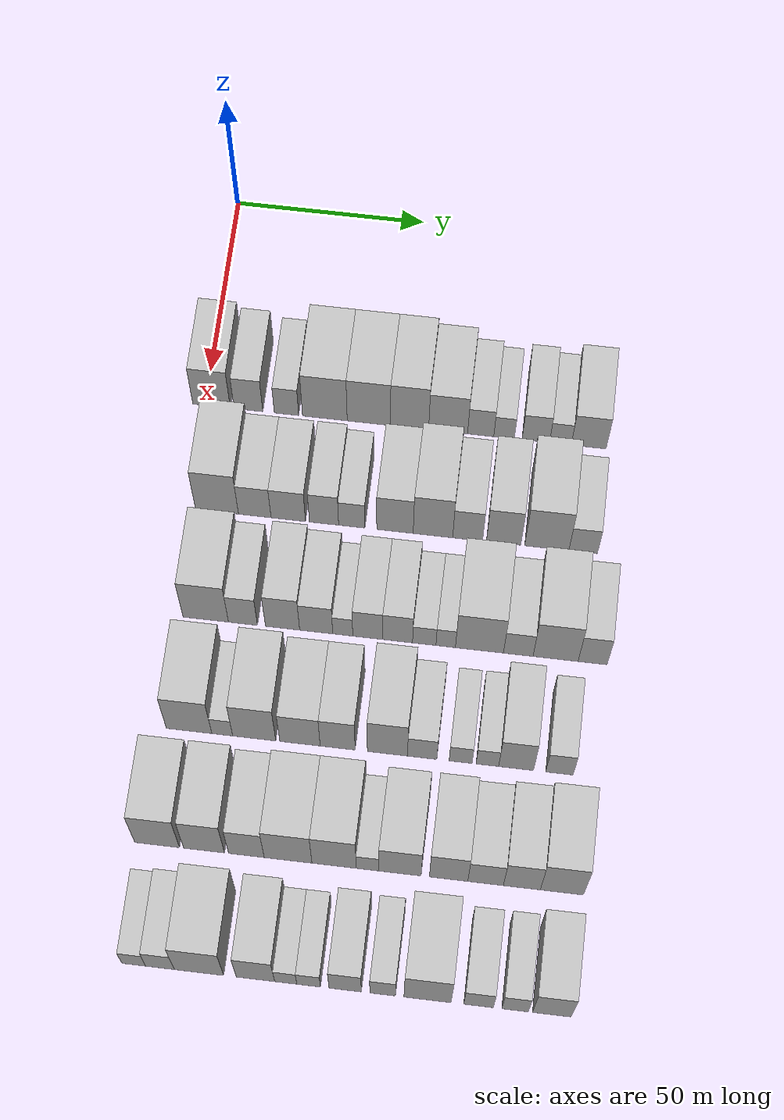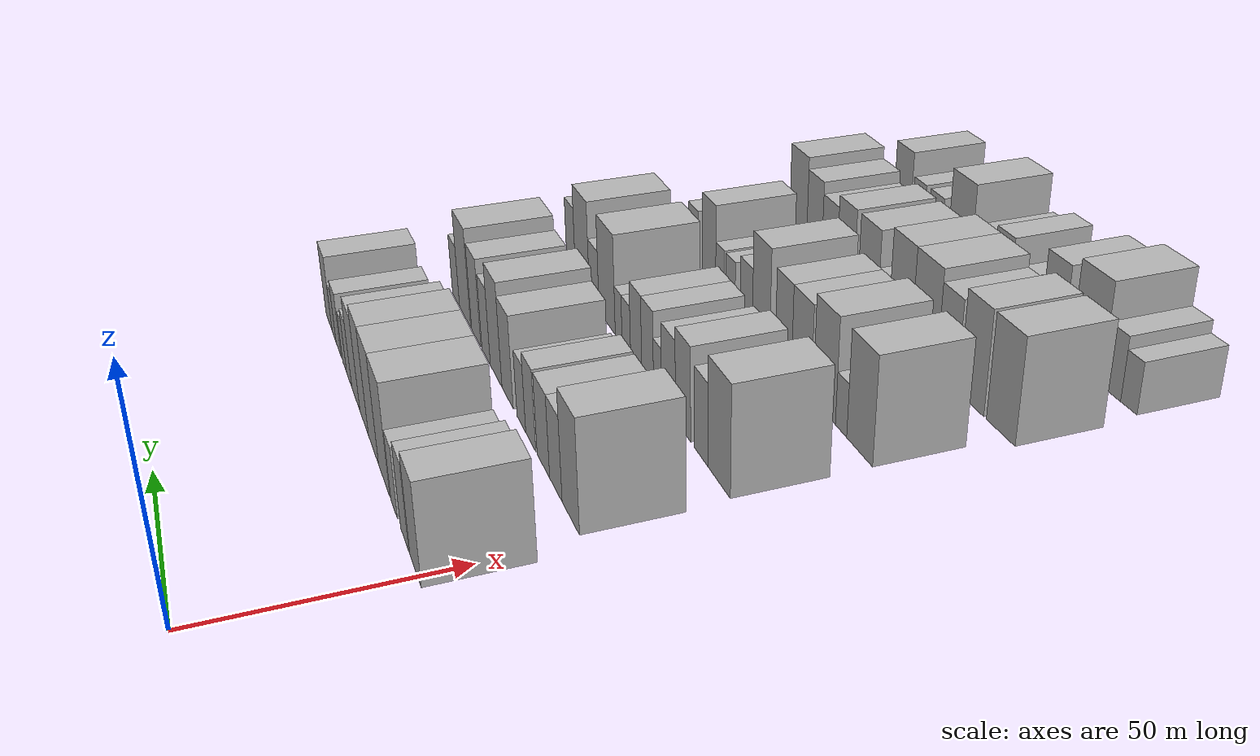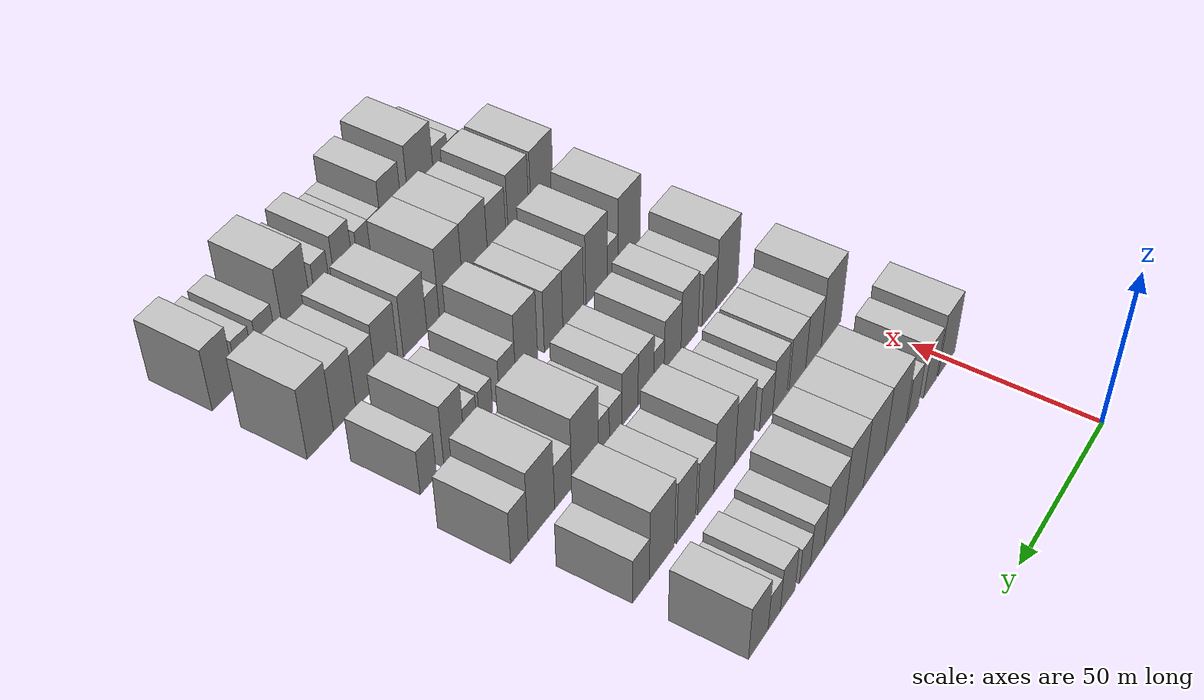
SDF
<sdf version="1.6">
 <world name="default">
  <model name="building_59">
   <static>1</static>
   <pose>50.0000 1.6662 0 0.000000 0.000000 0.000000</pose>
   <link name="link">
    <pose>0 0 10.50 0 0 0</pose>
    <collision name="collision"><geometry><box><size>20.0000 9.7988 21.0000</size></box></geometry></collision>
    <visual name="visual">
     <cast_shadows>0</cast_shadows>
     <geometry><box><size>20.0000 9.7988 21.0000</size></box></geometry>
     <material>
      <script>
       <uri>model://HANNAS_wall/materials/scripts</uri>
       <uri>model://HANNAS_wall/materials/textures</uri>
       <name>vrc/HANNAS_wall</name>
      </script>
     </material>
    </visual>
   </link>
  </model>
  <model name="building_60">
   <static>1</static>
   <pose>50.0000 11.2999 0 0.000000 0.000000 0.000000</pose>
   <link name="link">
    <pose>0 0 9.00 0 0 0</pose>
    <collision name="collision"><geometry><box><size>20.0000 7.4685 18.0000</size></box></geometry></collision>
    <visual name="visual">
     <cast_shadows>0</cast_shadows>
     <geometry><box><size>20.0000 7.4685 18.0000</size></box></geometry>
     <material>
      <script>
       <uri>model://HANNAS_wall/materials/scripts</uri>
       <uri>model://HANNAS_wall/materials/textures</uri>
       <name>vrc/HANNAS_wall</name>
      </script>
     </material>
    </visual>
   </link>
  </model>
  <model name="building_61">
   <static>1</static>
   <pose>50.0000 21.2005 0 0.000000 0.000000 0.000000</pose>
   <link name="link">
    <pose>0 0 7.50 0 0 0</pose>
    <collision name="collision"><geometry><box><size>20.0000 6.3329 15.0000</size></box></geometry></collision>
    <visual name="visual">
     <cast_shadows>0</cast_shadows>
     <geometry><box><size>20.0000 6.3329 15.0000</size></box></geometry>
     <material>
      <script>
       <uri>model://HANNAS_wall/materials/scripts</uri>
       <uri>model://HANNAS_wall/materials/textures</uri>
       <name>vrc/HANNAS_wall</name>
      </script>
     </material>
    </visual>
   </link>
  </model>
  <model name="building_62">
   <static>1</static>
   <pose>50.0000 31.1715 0 0.000000 0.000000 0.000000</pose>
   <link name="link">
    <pose>0 0 12.00 0 0 0</pose>
    <collision name="collision"><geometry><box><size>20.0000 11.6090 24.0000</size></box></geometry></collision>
    <visual name="visual">
     <cast_shadows>0</cast_shadows>
     <geometry><box><size>20.0000 11.6090 24.0000</size></box></geometry>
     <material>
      <script>
       <uri>model://HANNAS_wall/materials/scripts</uri>
       <uri>model://HANNAS_wall/materials/textures</uri>
       <name>vrc/HANNAS_wall</name>
      </script>
     </material>
    </visual>
   </link>
  </model>
  <model name="building_63">
   <static>1</static>
   <pose>50.0000 42.5768 0 0.000000 0.000000 0.000000</pose>
   <link name="link">
    <pose>0 0 12.00 0 0 0</pose>
    <collision name="collision"><geometry><box><size>20.0000 11.2016 24.0000</size></box></geometry></collision>
    <visual name="visual">
     <cast_shadows>0</cast_shadows>
     <geometry><box><size>20.0000 11.2016 24.0000</size></box></geometry>
     <material>
      <script>
       <uri>model://HANNAS_wall/materials/scripts</uri>
       <uri>model://HANNAS_wall/materials/textures</uri>
       <name>vrc/HANNAS_wall</name>
      </script>
     </material>
    </visual>
   </link>
  </model>
  <model name="building_64">
   <static>1</static>
   <pose>50.0000 53.1320 0 0.000000 0.000000 0.000000</pose>
   <link name="link">
    <pose>0 0 12.00 0 0 0</pose>
    <collision name="collision"><geometry><box><size>20.0000 9.9088 24.0000</size></box></geometry></collision>
    <visual name="visual">
     <cast_shadows>0</cast_shadows>
     <geometry><box><size>20.0000 9.9088 24.0000</size></box></geometry>
     <material>
      <script>
       <uri>model://HANNAS_wall/materials/scripts</uri>
       <uri>model://HANNAS_wall/materials/textures</uri>
       <name>vrc/HANNAS_wall</name>
      </script>
     </material>
    </visual>
   </link>
  </model>
  <model name="building_65">
   <static>1</static>
   <pose>50.0000 63.1203 0 0.000000 0.000000 0.000000</pose>
   <link name="link">
    <pose>0 0 10.50 0 0 0</pose>
    <collision name="collision"><geometry><box><size>20.0000 10.0676 21.0000</size></box></geometry></collision>
    <visual name="visual">
     <cast_shadows>0</cast_shadows>
     <geometry><box><size>20.0000 10.0676 21.0000</size></box></geometry>
     <material>
      <script>
       <uri>model://HANNAS_wall/materials/scripts</uri>
       <uri>model://HANNAS_wall/materials/textures</uri>
       <name>vrc/HANNAS_wall</name>
      </script>
     </material>
    </visual>
   </link>
  </model>
  <model name="building_66">
   <static>1</static>
   <pose>50.0000 71.5389 0 0.000000 0.000000 0.000000</pose>
   <link name="link">
    <pose>0 0 7.50 0 0 0</pose>
    <collision name="collision"><geometry><box><size>20.0000 6.7696 15.0000</size></box></geometry></collision>
    <visual name="visual">
     <cast_shadows>0</cast_shadows>
     <geometry><box><size>20.0000 6.7696 15.0000</size></box></geometry>
     <material>
      <script>
       <uri>model://HANNAS_wall/materials/scripts</uri>
       <uri>model://HANNAS_wall/materials/textures</uri>
       <name>vrc/HANNAS_wall</name>
      </script>
     </material>
    </visual>
   </link>
  </model>
  <model name="building_67">
   <static>1</static>
   <pose>50.0000 77.5764 0 0.000000 0.000000 0.000000</pose>
   <link name="link">
    <pose>0 0 6.00 0 0 0</pose>
    <collision name="collision"><geometry><box><size>20.0000 5.3054 12.0000</size></box></geometry></collision>
    <visual name="visual">
     <cast_shadows>0</cast_shadows>
     <geometry><box><size>20.0000 5.3054 12.0000</size></box></geometry>
     <material>
      <script>
       <uri>model://HANNAS_wall/materials/scripts</uri>
       <uri>model://HANNAS_wall/materials/textures</uri>
       <name>vrc/HANNAS_wall</name>
      </script>
     </material>
    </visual>
   </link>
  </model>
  <model name="building_68">
   <static>1</static>
   <pose>50.0000 85.7597 0 0.000000 0.000000 0.000000</pose>
   <link name="link">
    <pose>0 0 7.50 0 0 0</pose>
    <collision name="collision"><geometry><box><size>20.0000 7.0612 15.0000</size></box></geometry></collision>
    <visual name="visual">
     <cast_shadows>0</cast_shadows>
     <geometry><box><size>20.0000 7.0612 15.0000</size></box></geometry>
     <material>
      <script>
       <uri>model://HANNAS_wall/materials/scripts</uri>
       <uri>model://HANNAS_wall/materials/textures</uri>
       <name>vrc/HANNAS_wall</name>
      </script>
     </material>
    </visual>
   </link>
  </model>
  <model name="building_69">
   <static>1</static>
   <pose>50.0000 92.0968 0 0.000000 0.000000 0.000000</pose>
   <link name="link">
    <pose>0 0 6.00 0 0 0</pose>
    <collision name="collision"><geometry><box><size>20.0000 5.6129 12.0000</size></box></geometry></collision>
    <visual name="visual">
     <cast_shadows>0</cast_shadows>
     <geometry><box><size>20.0000 5.6129 12.0000</size></box></geometry>
     <material>
      <script>
       <uri>model://HANNAS_wall/materials/scripts</uri>
       <uri>model://HANNAS_wall/materials/textures</uri>
       <name>vrc/HANNAS_wall</name>
      </script>
     </material>
    </visual>
   </link>
  </model>
  <model name="building_70">
   <static>1</static>
   <pose>50.0000 99.3891 0 0.000000 0.000000 0.000000</pose>
   <link name="link">
    <pose>0 0 9.00 0 0 0</pose>
    <collision name="collision"><geometry><box><size>20.0000 8.9718 18.0000</size></box></geometry></collision>
    <visual name="visual">
     <cast_shadows>0</cast_shadows>
     <geometry><box><size>20.0000 8.9718 18.0000</size></box></geometry>
     <material>
      <script>
       <uri>model://HANNAS_wall/materials/scripts</uri>
       <uri>model://HANNAS_wall/materials/textures</uri>
       <name>vrc/HANNAS_wall</name>
      </script>
     </material>
    </visual>
   </link>
  </model>
  <model name="building_177">
   <static>1</static>
   <pose>79.0000 7.3074 0 0.000000 0.000000 0.000000</pose>
   <link name="link">
    <pose>0 0 12.00 0 0 0</pose>
    <collision name="collision"><geometry><box><size>20.0000 11.0005 24.0000</size></box></geometry></collision>
    <visual name="visual">
     <cast_shadows>0</cast_shadows>
     <geometry><box><size>20.0000 11.0005 24.0000</size></box></geometry>
     <material>
      <script>
       <uri>model://HANNAS_wall/materials/scripts</uri>
       <uri>model://HANNAS_wall/materials/textures</uri>
       <name>vrc/HANNAS_wall</name>
      </script>
     </material>
    </visual>
   </link>
  </model>
  <model name="building_178">
   <static>1</static>
   <pose>79.0000 16.9715 0 0.000000 0.000000 0.000000</pose>
   <link name="link">
    <pose>0 0 9.00 0 0 0</pose>
    <collision name="collision"><geometry><box><size>20.0000 8.3276 18.0000</size></box></geometry></collision>
    <visual name="visual">
     <cast_shadows>0</cast_shadows>
     <geometry><box><size>20.0000 8.3276 18.0000</size></box></geometry>
     <material>
      <script>
       <uri>model://HANNAS_wall/materials/scripts</uri>
       <uri>model://HANNAS_wall/materials/textures</uri>
       <name>vrc/HANNAS_wall</name>
      </script>
     </material>
    </visual>
   </link>
  </model>
  <model name="building_179">
   <static>1</static>
   <pose>79.0000 25.5395 0 0.000000 0.000000 0.000000</pose>
   <link name="link">
    <pose>0 0 9.00 0 0 0</pose>
    <collision name="collision"><geometry><box><size>20.0000 8.8085 18.0000</size></box></geometry></collision>
    <visual name="visual">
     <cast_shadows>0</cast_shadows>
     <geometry><box><size>20.0000 8.8085 18.0000</size></box></geometry>
     <material>
      <script>
       <uri>model://HANNAS_wall/materials/scripts</uri>
       <uri>model://HANNAS_wall/materials/textures</uri>
       <name>vrc/HANNAS_wall</name>
      </script>
     </material>
    </visual>
   </link>
  </model>
  <model name="building_180">
   <static>1</static>
   <pose>79.0000 34.6642 0 0.000000 0.000000 0.000000</pose>
   <link name="link">
    <pose>0 0 9.00 0 0 0</pose>
    <collision name="collision"><geometry><box><size>20.0000 7.4408 18.0000</size></box></geometry></collision>
    <visual name="visual">
     <cast_shadows>0</cast_shadows>
     <geometry><box><size>20.0000 7.4408 18.0000</size></box></geometry>
     <material>
      <script>
       <uri>model://HANNAS_wall/materials/scripts</uri>
       <uri>model://HANNAS_wall/materials/textures</uri>
       <name>vrc/HANNAS_wall</name>
      </script>
     </material>
    </visual>
   </link>
  </model>
  <model name="building_181">
   <static>1</static>
   <pose>79.0000 41.7404 0 0.000000 0.000000 0.000000</pose>
   <link name="link">
    <pose>0 0 7.50 0 0 0</pose>
    <collision name="collision"><geometry><box><size>20.0000 6.7117 15.0000</size></box></geometry></collision>
    <visual name="visual">
     <cast_shadows>0</cast_shadows>
     <geometry><box><size>20.0000 6.7117 15.0000</size></box></geometry>
     <material>
      <script>
       <uri>model://HANNAS_wall/materials/scripts</uri>
       <uri>model://HANNAS_wall/materials/textures</uri>
       <name>vrc/HANNAS_wall</name>
      </script>
     </material>
    </visual>
   </link>
  </model>
  <model name="building_182">
   <static>1</static>
   <pose>79.0000 52.7337 0 0.000000 0.000000 0.000000</pose>
   <link name="link">
    <pose>0 0 10.50 0 0 0</pose>
    <collision name="collision"><geometry><box><size>20.0000 9.2749 21.0000</size></box></geometry></collision>
    <visual name="visual">
     <cast_shadows>0</cast_shadows>
     <geometry><box><size>20.0000 9.2749 21.0000</size></box></geometry>
     <material>
      <script>
       <uri>model://HANNAS_wall/materials/scripts</uri>
       <uri>model://HANNAS_wall/materials/textures</uri>
       <name>vrc/HANNAS_wall</name>
      </script>
     </material>
    </visual>
   </link>
  </model>
  <model name="building_183">
   <static>1</static>
   <pose>79.0000 62.3837 0 0.000000 0.000000 0.000000</pose>
   <link name="link">
    <pose>0 0 12.00 0 0 0</pose>
    <collision name="collision"><geometry><box><size>20.0000 10.0250 24.0000</size></box></geometry></collision>
    <visual name="visual">
     <cast_shadows>0</cast_shadows>
     <geometry><box><size>20.0000 10.0250 24.0000</size></box></geometry>
     <material>
      <script>
       <uri>model://HANNAS_wall/materials/scripts</uri>
       <uri>model://HANNAS_wall/materials/textures</uri>
       <name>vrc/HANNAS_wall</name>
      </script>
     </material>
    </visual>
   </link>
  </model>
  <model name="building_184">
   <static>1</static>
   <pose>79.0000 71.1865 0 0.000000 0.000000 0.000000</pose>
   <link name="link">
    <pose>0 0 9.00 0 0 0</pose>
    <collision name="collision"><geometry><box><size>20.0000 7.5806 18.0000</size></box></geometry></collision>
    <visual name="visual">
     <cast_shadows>0</cast_shadows>
     <geometry><box><size>20.0000 7.5806 18.0000</size></box></geometry>
     <material>
      <script>
       <uri>model://HANNAS_wall/materials/scripts</uri>
       <uri>model://HANNAS_wall/materials/textures</uri>
       <name>vrc/HANNAS_wall</name>
      </script>
     </material>
    </visual>
   </link>
  </model>
  <model name="building_185">
   <static>1</static>
   <pose>79.0000 80.3254 0 0.000000 0.000000 0.000000</pose>
   <link name="link">
    <pose>0 0 10.50 0 0 0</pose>
    <collision name="collision"><geometry><box><size>20.0000 8.6972 21.0000</size></box></geometry></collision>
    <visual name="visual">
     <cast_shadows>0</cast_shadows>
     <geometry><box><size>20.0000 8.6972 21.0000</size></box></geometry>
     <material>
      <script>
       <uri>model://HANNAS_wall/materials/scripts</uri>
       <uri>model://HANNAS_wall/materials/textures</uri>
       <name>vrc/HANNAS_wall</name>
      </script>
     </material>
    </visual>
   </link>
  </model>
  <model name="building_186">
   <static>1</static>
   <pose>79.0000 91.2514 0 0.000000 0.000000 0.000000</pose>
   <link name="link">
    <pose>0 0 12.00 0 0 0</pose>
    <collision name="collision"><geometry><box><size>20.0000 11.1548 24.0000</size></box></geometry></collision>
    <visual name="visual">
     <cast_shadows>0</cast_shadows>
     <geometry><box><size>20.0000 11.1548 24.0000</size></box></geometry>
     <material>
      <script>
       <uri>model://HANNAS_wall/materials/scripts</uri>
       <uri>model://HANNAS_wall/materials/textures</uri>
       <name>vrc/HANNAS_wall</name>
      </script>
     </material>
    </visual>
   </link>
  </model>
  <model name="building_187">
   <static>1</static>
   <pose>79.0000 100.4336 0 0.000000 0.000000 0.000000</pose>
   <link name="link">
    <pose>0 0 7.50 0 0 0</pose>
    <collision name="collision"><geometry><box><size>20.0000 7.2096 15.0000</size></box></geometry></collision>
    <visual name="visual">
     <cast_shadows>0</cast_shadows>
     <geometry><box><size>20.0000 7.2096 15.0000</size></box></geometry>
     <material>
      <script>
       <uri>model://HANNAS_wall/materials/scripts</uri>
       <uri>model://HANNAS_wall/materials/textures</uri>
       <name>vrc/HANNAS_wall</name>
      </script>
     </material>
    </visual>
   </link>
  </model>
  <model name="building_290">
   <static>1</static>
   <pose>108.0000 8.7087 0 0.000000 0.000000 0.000000</pose>
   <link name="link">
    <pose>0 0 12.00 0 0 0</pose>
    <collision name="collision"><geometry><box><size>20.0000 11.4126 24.0000</size></box></geometry></collision>
    <visual name="visual">
     <cast_shadows>0</cast_shadows>
     <geometry><box><size>20.0000 11.4126 24.0000</size></box></geometry>
     <material>
      <script>
       <uri>model://HANNAS_wall/materials/scripts</uri>
       <uri>model://HANNAS_wall/materials/textures</uri>
       <name>vrc/HANNAS_wall</name>
      </script>
     </material>
    </visual>
   </link>
  </model>
  <model name="building_291">
   <static>1</static>
   <pose>108.0000 18.0605 0 0.000000 0.000000 0.000000</pose>
   <link name="link">
    <pose>0 0 9.00 0 0 0</pose>
    <collision name="collision"><geometry><box><size>20.0000 7.2910 18.0000</size></box></geometry></collision>
    <visual name="visual">
     <cast_shadows>0</cast_shadows>
     <geometry><box><size>20.0000 7.2910 18.0000</size></box></geometry>
     <material>
      <script>
       <uri>model://HANNAS_wall/materials/scripts</uri>
       <uri>model://HANNAS_wall/materials/textures</uri>
       <name>vrc/HANNAS_wall</name>
      </script>
     </material>
    </visual>
   </link>
  </model>
  <model name="building_292">
   <static>1</static>
   <pose>108.0000 27.9884 0 0.000000 0.000000 0.000000</pose>
   <link name="link">
    <pose>0 0 10.50 0 0 0</pose>
    <collision name="collision"><geometry><box><size>20.0000 8.5649 21.0000</size></box></geometry></collision>
    <visual name="visual">
     <cast_shadows>0</cast_shadows>
     <geometry><box><size>20.0000 8.5649 21.0000</size></box></geometry>
     <material>
      <script>
       <uri>model://HANNAS_wall/materials/scripts</uri>
       <uri>model://HANNAS_wall/materials/textures</uri>
       <name>vrc/HANNAS_wall</name>
      </script>
     </material>
    </visual>
   </link>
  </model>
  <model name="building_293">
   <static>1</static>
   <pose>108.0000 36.4118 0 0.000000 0.000000 0.000000</pose>
   <link name="link">
    <pose>0 0 9.00 0 0 0</pose>
    <collision name="collision"><geometry><box><size>20.0000 8.2819 18.0000</size></box></geometry></collision>
    <visual name="visual">
     <cast_shadows>0</cast_shadows>
     <geometry><box><size>20.0000 8.2819 18.0000</size></box></geometry>
     <material>
      <script>
       <uri>model://HANNAS_wall/materials/scripts</uri>
       <uri>model://HANNAS_wall/materials/textures</uri>
       <name>vrc/HANNAS_wall</name>
      </script>
     </material>
    </visual>
   </link>
  </model>
  <model name="building_294">
   <static>1</static>
   <pose>108.0000 43.0559 0 0.000000 0.000000 0.000000</pose>
   <link name="link">
    <pose>0 0 6.00 0 0 0</pose>
    <collision name="collision"><geometry><box><size>20.0000 5.0061 12.0000</size></box></geometry></collision>
    <visual name="visual">
     <cast_shadows>0</cast_shadows>
     <geometry><box><size>20.0000 5.0061 12.0000</size></box></geometry>
     <material>
      <script>
       <uri>model://HANNAS_wall/materials/scripts</uri>
       <uri>model://HANNAS_wall/materials/textures</uri>
       <name>vrc/HANNAS_wall</name>
      </script>
     </material>
    </visual>
   </link>
  </model>
  <model name="building_295">
   <static>1</static>
   <pose>108.0000 49.2959 0 0.000000 0.000000 0.000000</pose>
   <link name="link">
    <pose>0 0 9.00 0 0 0</pose>
    <collision name="collision"><geometry><box><size>20.0000 7.4739 18.0000</size></box></geometry></collision>
    <visual name="visual">
     <cast_shadows>0</cast_shadows>
     <geometry><box><size>20.0000 7.4739 18.0000</size></box></geometry>
     <material>
      <script>
       <uri>model://HANNAS_wall/materials/scripts</uri>
       <uri>model://HANNAS_wall/materials/textures</uri>
       <name>vrc/HANNAS_wall</name>
      </script>
     </material>
    </visual>
   </link>
  </model>
  <model name="building_296">
   <static>1</static>
   <pose>108.0000 56.7642 0 0.000000 0.000000 0.000000</pose>
   <link name="link">
    <pose>0 0 9.00 0 0 0</pose>
    <collision name="collision"><geometry><box><size>20.0000 7.4628 18.0000</size></box></geometry></collision>
    <visual name="visual">
     <cast_shadows>0</cast_shadows>
     <geometry><box><size>20.0000 7.4628 18.0000</size></box></geometry>
     <material>
      <script>
       <uri>model://HANNAS_wall/materials/scripts</uri>
       <uri>model://HANNAS_wall/materials/textures</uri>
       <name>vrc/HANNAS_wall</name>
      </script>
     </material>
    </visual>
   </link>
  </model>
  <model name="building_297">
   <static>1</static>
   <pose>108.0000 63.4159 0 0.000000 0.000000 0.000000</pose>
   <link name="link">
    <pose>0 0 6.00 0 0 0</pose>
    <collision name="collision"><geometry><box><size>20.0000 5.8407 12.0000</size></box></geometry></collision>
    <visual name="visual">
     <cast_shadows>0</cast_shadows>
     <geometry><box><size>20.0000 5.8407 12.0000</size></box></geometry>
     <material>
      <script>
       <uri>model://HANNAS_wall/materials/scripts</uri>
       <uri>model://HANNAS_wall/materials/textures</uri>
       <name>vrc/HANNAS_wall</name>
      </script>
     </material>
    </visual>
   </link>
  </model>
  <model name="building_298">
   <static>1</static>
   <pose>108.0000 68.7597 0 0.000000 0.000000 0.000000</pose>
   <link name="link">
    <pose>0 0 6.00 0 0 0</pose>
    <collision name="collision"><geometry><box><size>20.0000 4.8468 12.0000</size></box></geometry></collision>
    <visual name="visual">
     <cast_shadows>0</cast_shadows>
     <geometry><box><size>20.0000 4.8468 12.0000</size></box></geometry>
     <material>
      <script>
       <uri>model://HANNAS_wall/materials/scripts</uri>
       <uri>model://HANNAS_wall/materials/textures</uri>
       <name>vrc/HANNAS_wall</name>
      </script>
     </material>
    </visual>
   </link>
  </model>
  <model name="building_299">
   <static>1</static>
   <pose>108.0000 77.1583 0 0.000000 0.000000 0.000000</pose>
   <link name="link">
    <pose>0 0 12.00 0 0 0</pose>
    <collision name="collision"><geometry><box><size>20.0000 11.9503 24.0000</size></box></geometry></collision>
    <visual name="visual">
     <cast_shadows>0</cast_shadows>
     <geometry><box><size>20.0000 11.9503 24.0000</size></box></geometry>
     <material>
      <script>
       <uri>model://HANNAS_wall/materials/scripts</uri>
       <uri>model://HANNAS_wall/materials/textures</uri>
       <name>vrc/HANNAS_wall</name>
      </script>
     </material>
    </visual>
   </link>
  </model>
  <model name="building_300">
   <static>1</static>
   <pose>108.0000 86.8088 0 0.000000 0.000000 0.000000</pose>
   <link name="link">
    <pose>0 0 7.50 0 0 0</pose>
    <collision name="collision"><geometry><box><size>20.0000 7.3507 15.0000</size></box></geometry></collision>
    <visual name="visual">
     <cast_shadows>0</cast_shadows>
     <geometry><box><size>20.0000 7.3507 15.0000</size></box></geometry>
     <material>
      <script>
       <uri>model://HANNAS_wall/materials/scripts</uri>
       <uri>model://HANNAS_wall/materials/textures</uri>
       <name>vrc/HANNAS_wall</name>
      </script>
     </material>
    </visual>
   </link>
  </model>
  <model name="building_301">
   <static>1</static>
   <pose>108.0000 96.0688 0 0.000000 0.000000 0.000000</pose>
   <link name="link">
    <pose>0 0 12.00 0 0 0</pose>
    <collision name="collision"><geometry><box><size>20.0000 11.1694 24.0000</size></box></geometry></collision>
    <visual name="visual">
     <cast_shadows>0</cast_shadows>
     <geometry><box><size>20.0000 11.1694 24.0000</size></box></geometry>
     <material>
      <script>
       <uri>model://HANNAS_wall/materials/scripts</uri>
       <uri>model://HANNAS_wall/materials/textures</uri>
       <name>vrc/HANNAS_wall</name>
      </script>
     </material>
    </visual>
   </link>
  </model>
  <model name="building_302">
   <static>1</static>
   <pose>108.0000 105.2571 0 0.000000 0.000000 0.000000</pose>
   <link name="link">
    <pose>0 0 9.00 0 0 0</pose>
    <collision name="collision"><geometry><box><size>20.0000 7.2072 18.0000</size></box></geometry></collision>
    <visual name="visual">
     <cast_shadows>0</cast_shadows>
     <geometry><box><size>20.0000 7.2072 18.0000</size></box></geometry>
     <material>
      <script>
       <uri>model://HANNAS_wall/materials/scripts</uri>
       <uri>model://HANNAS_wall/materials/textures</uri>
       <name>vrc/HANNAS_wall</name>
      </script>
     </material>
    </visual>
   </link>
  </model>
  <model name="building_407">
   <static>1</static>
   <pose>137.0000 8.8885 0 0.000000 0.000000 0.000000</pose>
   <link name="link">
    <pose>0 0 12.00 0 0 0</pose>
    <collision name="collision"><geometry><box><size>20.0000 11.2349 24.0000</size></box></geometry></collision>
    <visual name="visual">
     <cast_shadows>0</cast_shadows>
     <geometry><box><size>20.0000 11.2349 24.0000</size></box></geometry>
     <material>
      <script>
       <uri>model://HANNAS_wall/materials/scripts</uri>
       <uri>model://HANNAS_wall/materials/textures</uri>
       <name>vrc/HANNAS_wall</name>
      </script>
     </material>
    </visual>
   </link>
  </model>
  <model name="building_408">
   <static>1</static>
   <pose>137.0000 17.0705 0 0.000000 0.000000 0.000000</pose>
   <link name="link">
    <pose>0 0 6.00 0 0 0</pose>
    <collision name="collision"><geometry><box><size>20.0000 5.1292 12.0000</size></box></geometry></collision>
    <visual name="visual">
     <cast_shadows>0</cast_shadows>
     <geometry><box><size>20.0000 5.1292 12.0000</size></box></geometry>
     <material>
      <script>
       <uri>model://HANNAS_wall/materials/scripts</uri>
       <uri>model://HANNAS_wall/materials/textures</uri>
       <name>vrc/HANNAS_wall</name>
      </script>
     </material>
    </visual>
   </link>
  </model>
  <model name="building_409">
   <static>1</static>
   <pose>137.0000 24.9393 0 0.000000 0.000000 0.000000</pose>
   <link name="link">
    <pose>0 0 12.00 0 0 0</pose>
    <collision name="collision"><geometry><box><size>20.0000 10.6084 24.0000</size></box></geometry></collision>
    <visual name="visual">
     <cast_shadows>0</cast_shadows>
     <geometry><box><size>20.0000 10.6084 24.0000</size></box></geometry>
     <material>
      <script>
       <uri>model://HANNAS_wall/materials/scripts</uri>
       <uri>model://HANNAS_wall/materials/textures</uri>
       <name>vrc/HANNAS_wall</name>
      </script>
     </material>
    </visual>
   </link>
  </model>
  <model name="building_410">
   <static>1</static>
   <pose>137.0000 36.1915 0 0.000000 0.000000 0.000000</pose>
   <link name="link">
    <pose>0 0 10.50 0 0 0</pose>
    <collision name="collision"><geometry><box><size>20.0000 9.8959 21.0000</size></box></geometry></collision>
    <visual name="visual">
     <cast_shadows>0</cast_shadows>
     <geometry><box><size>20.0000 9.8959 21.0000</size></box></geometry>
     <material>
      <script>
       <uri>model://HANNAS_wall/materials/scripts</uri>
       <uri>model://HANNAS_wall/materials/textures</uri>
       <name>vrc/HANNAS_wall</name>
      </script>
     </material>
    </visual>
   </link>
  </model>
  <model name="building_411">
   <static>1</static>
   <pose>137.0000 45.4345 0 0.000000 0.000000 0.000000</pose>
   <link name="link">
    <pose>0 0 10.50 0 0 0</pose>
    <collision name="collision"><geometry><box><size>20.0000 8.5900 21.0000</size></box></geometry></collision>
    <visual name="visual">
     <cast_shadows>0</cast_shadows>
     <geometry><box><size>20.0000 8.5900 21.0000</size></box></geometry>
     <material>
      <script>
       <uri>model://HANNAS_wall/materials/scripts</uri>
       <uri>model://HANNAS_wall/materials/textures</uri>
       <name>vrc/HANNAS_wall</name>
      </script>
     </material>
    </visual>
   </link>
  </model>
  <model name="building_412">
   <static>1</static>
   <pose>137.0000 57.6269 0 0.000000 0.000000 0.000000</pose>
   <link name="link">
    <pose>0 0 12.00 0 0 0</pose>
    <collision name="collision"><geometry><box><size>20.0000 9.7949 24.0000</size></box></geometry></collision>
    <visual name="visual">
     <cast_shadows>0</cast_shadows>
     <geometry><box><size>20.0000 9.7949 24.0000</size></box></geometry>
     <material>
      <script>
       <uri>model://HANNAS_wall/materials/scripts</uri>
       <uri>model://HANNAS_wall/materials/textures</uri>
       <name>vrc/HANNAS_wall</name>
      </script>
     </material>
    </visual>
   </link>
  </model>
  <model name="building_413">
   <static>1</static>
   <pose>137.0000 66.1241 0 0.000000 0.000000 0.000000</pose>
   <link name="link">
    <pose>0 0 7.50 0 0 0</pose>
    <collision name="collision"><geometry><box><size>20.0000 7.1995 15.0000</size></box></geometry></collision>
    <visual name="visual">
     <cast_shadows>0</cast_shadows>
     <geometry><box><size>20.0000 7.1995 15.0000</size></box></geometry>
     <material>
      <script>
       <uri>model://HANNAS_wall/materials/scripts</uri>
       <uri>model://HANNAS_wall/materials/textures</uri>
       <name>vrc/HANNAS_wall</name>
      </script>
     </material>
    </visual>
   </link>
  </model>
  <model name="building_414">
   <static>1</static>
   <pose>137.0000 75.5299 0 0.000000 0.000000 0.000000</pose>
   <link name="link">
    <pose>0 0 6.00 0 0 0</pose>
    <collision name="collision"><geometry><box><size>20.0000 5.6122 12.0000</size></box></geometry></collision>
    <visual name="visual">
     <cast_shadows>0</cast_shadows>
     <geometry><box><size>20.0000 5.6122 12.0000</size></box></geometry>
     <material>
      <script>
       <uri>model://HANNAS_wall/materials/scripts</uri>
       <uri>model://HANNAS_wall/materials/textures</uri>
       <name>vrc/HANNAS_wall</name>
      </script>
     </material>
    </visual>
   </link>
  </model>
  <model name="building_415">
   <static>1</static>
   <pose>137.0000 82.0754 0 0.000000 0.000000 0.000000</pose>
   <link name="link">
    <pose>0 0 6.00 0 0 0</pose>
    <collision name="collision"><geometry><box><size>20.0000 5.4788 12.0000</size></box></geometry></collision>
    <visual name="visual">
     <cast_shadows>0</cast_shadows>
     <geometry><box><size>20.0000 5.4788 12.0000</size></box></geometry>
     <material>
      <script>
       <uri>model://HANNAS_wall/materials/scripts</uri>
       <uri>model://HANNAS_wall/materials/textures</uri>
       <name>vrc/HANNAS_wall</name>
      </script>
     </material>
    </visual>
   </link>
  </model>
  <model name="building_416">
   <static>1</static>
   <pose>137.0000 89.0615 0 0.000000 0.000000 0.000000</pose>
   <link name="link">
    <pose>0 0 10.50 0 0 0</pose>
    <collision name="collision"><geometry><box><size>20.0000 8.4934 21.0000</size></box></geometry></collision>
    <visual name="visual">
     <cast_shadows>0</cast_shadows>
     <geometry><box><size>20.0000 8.4934 21.0000</size></box></geometry>
     <material>
      <script>
       <uri>model://HANNAS_wall/materials/scripts</uri>
       <uri>model://HANNAS_wall/materials/textures</uri>
       <name>vrc/HANNAS_wall</name>
      </script>
     </material>
    </visual>
   </link>
  </model>
  <model name="building_417">
   <static>1</static>
   <pose>137.0000 99.6382 0 0.000000 0.000000 0.000000</pose>
   <link name="link">
    <pose>0 0 7.50 0 0 0</pose>
    <collision name="collision"><geometry><box><size>20.0000 6.6601 15.0000</size></box></geometry></collision>
    <visual name="visual">
     <cast_shadows>0</cast_shadows>
     <geometry><box><size>20.0000 6.6601 15.0000</size></box></geometry>
     <material>
      <script>
       <uri>model://HANNAS_wall/materials/scripts</uri>
       <uri>model://HANNAS_wall/materials/textures</uri>
       <name>vrc/HANNAS_wall</name>
      </script>
     </material>
    </visual>
   </link>
  </model>
  <model name="building_529">
   <static>1</static>
   <pose>166.0000 5.5029 0 0.000000 0.000000 0.000000</pose>
   <link name="link">
    <pose>0 0 12.00 0 0 0</pose>
    <collision name="collision"><geometry><box><size>20.0000 10.8638 24.0000</size></box></geometry></collision>
    <visual name="visual">
     <cast_shadows>0</cast_shadows>
     <geometry><box><size>20.0000 10.8638 24.0000</size></box></geometry>
     <material>
      <script>
       <uri>model://HANNAS_wall/materials/scripts</uri>
       <uri>model://HANNAS_wall/materials/textures</uri>
       <name>vrc/HANNAS_wall</name>
      </script>
     </material>
    </visual>
   </link>
  </model>
  <model name="building_530">
   <static>1</static>
   <pose>166.0000 16.8708 0 0.000000 0.000000 0.000000</pose>
   <link name="link">
    <pose>0 0 12.00 0 0 0</pose>
    <collision name="collision"><geometry><box><size>20.0000 9.8719 24.0000</size></box></geometry></collision>
    <visual name="visual">
     <cast_shadows>0</cast_shadows>
     <geometry><box><size>20.0000 9.8719 24.0000</size></box></geometry>
     <material>
      <script>
       <uri>model://HANNAS_wall/materials/scripts</uri>
       <uri>model://HANNAS_wall/materials/textures</uri>
       <name>vrc/HANNAS_wall</name>
      </script>
     </material>
    </visual>
   </link>
  </model>
  <model name="building_531">
   <static>1</static>
   <pose>166.0000 27.1029 0 0.000000 0.000000 0.000000</pose>
   <link name="link">
    <pose>0 0 10.50 0 0 0</pose>
    <collision name="collision"><geometry><box><size>20.0000 8.5924 21.0000</size></box></geometry></collision>
    <visual name="visual">
     <cast_shadows>0</cast_shadows>
     <geometry><box><size>20.0000 8.5924 21.0000</size></box></geometry>
     <material>
      <script>
       <uri>model://HANNAS_wall/materials/scripts</uri>
       <uri>model://HANNAS_wall/materials/textures</uri>
       <name>vrc/HANNAS_wall</name>
      </script>
     </material>
    </visual>
   </link>
  </model>
  <model name="building_532">
   <static>1</static>
   <pose>166.0000 37.1487 0 0.000000 0.000000 0.000000</pose>
   <link name="link">
    <pose>0 0 12.00 0 0 0</pose>
    <collision name="collision"><geometry><box><size>20.0000 11.4992 24.0000</size></box></geometry></collision>
    <visual name="visual">
     <cast_shadows>0</cast_shadows>
     <geometry><box><size>20.0000 11.4992 24.0000</size></box></geometry>
     <material>
      <script>
       <uri>model://HANNAS_wall/materials/scripts</uri>
       <uri>model://HANNAS_wall/materials/textures</uri>
       <name>vrc/HANNAS_wall</name>
      </script>
     </material>
    </visual>
   </link>
  </model>
  <model name="building_533">
   <static>1</static>
   <pose>166.0000 48.2281 0 0.000000 0.000000 0.000000</pose>
   <link name="link">
    <pose>0 0 12.00 0 0 0</pose>
    <collision name="collision"><geometry><box><size>20.0000 10.6596 24.0000</size></box></geometry></collision>
    <visual name="visual">
     <cast_shadows>0</cast_shadows>
     <geometry><box><size>20.0000 10.6596 24.0000</size></box></geometry>
     <material>
      <script>
       <uri>model://HANNAS_wall/materials/scripts</uri>
       <uri>model://HANNAS_wall/materials/textures</uri>
       <name>vrc/HANNAS_wall</name>
      </script>
     </material>
    </visual>
   </link>
  </model>
  <model name="building_534">
   <static>1</static>
   <pose>166.0000 56.2498 0 0.000000 0.000000 0.000000</pose>
   <link name="link">
    <pose>0 0 6.00 0 0 0</pose>
    <collision name="collision"><geometry><box><size>20.0000 5.3837 12.0000</size></box></geometry></collision>
    <visual name="visual">
     <cast_shadows>0</cast_shadows>
     <geometry><box><size>20.0000 5.3837 12.0000</size></box></geometry>
     <material>
      <script>
       <uri>model://HANNAS_wall/materials/scripts</uri>
       <uri>model://HANNAS_wall/materials/textures</uri>
       <name>vrc/HANNAS_wall</name>
      </script>
     </material>
    </visual>
   </link>
  </model>
  <model name="building_535">
   <static>1</static>
   <pose>166.0000 64.0322 0 0.000000 0.000000 0.000000</pose>
   <link name="link">
    <pose>0 0 10.50 0 0 0</pose>
    <collision name="collision"><geometry><box><size>20.0000 10.1810 21.0000</size></box></geometry></collision>
    <visual name="visual">
     <cast_shadows>0</cast_shadows>
     <geometry><box><size>20.0000 10.1810 21.0000</size></box></geometry>
     <material>
      <script>
       <uri>model://HANNAS_wall/materials/scripts</uri>
       <uri>model://HANNAS_wall/materials/textures</uri>
       <name>vrc/HANNAS_wall</name>
      </script>
     </material>
    </visual>
   </link>
  </model>
  <model name="building_536">
   <static>1</static>
   <pose>166.0000 75.7231 0 0.000000 0.000000 0.000000</pose>
   <link name="link">
    <pose>0 0 10.50 0 0 0</pose>
    <collision name="collision"><geometry><box><size>20.0000 9.2009 21.0000</size></box></geometry></collision>
    <visual name="visual">
     <cast_shadows>0</cast_shadows>
     <geometry><box><size>20.0000 9.2009 21.0000</size></box></geometry>
     <material>
      <script>
       <uri>model://HANNAS_wall/materials/scripts</uri>
       <uri>model://HANNAS_wall/materials/textures</uri>
       <name>vrc/HANNAS_wall</name>
      </script>
     </material>
    </visual>
   </link>
  </model>
  <model name="building_537">
   <static>1</static>
   <pose>166.0000 84.5832 0 0.000000 0.000000 0.000000</pose>
   <link name="link">
    <pose>0 0 9.00 0 0 0</pose>
    <collision name="collision"><geometry><box><size>20.0000 8.5191 18.0000</size></box></geometry></collision>
    <visual name="visual">
     <cast_shadows>0</cast_shadows>
     <geometry><box><size>20.0000 8.5191 18.0000</size></box></geometry>
     <material>
      <script>
       <uri>model://HANNAS_wall/materials/scripts</uri>
       <uri>model://HANNAS_wall/materials/textures</uri>
       <name>vrc/HANNAS_wall</name>
      </script>
     </material>
    </visual>
   </link>
  </model>
  <model name="building_538">
   <static>1</static>
   <pose>166.0000 93.2549 0 0.000000 0.000000 0.000000</pose>
   <link name="link">
    <pose>0 0 10.50 0 0 0</pose>
    <collision name="collision"><geometry><box><size>20.0000 8.8243 21.0000</size></box></geometry></collision>
    <visual name="visual">
     <cast_shadows>0</cast_shadows>
     <geometry><box><size>20.0000 8.8243 21.0000</size></box></geometry>
     <material>
      <script>
       <uri>model://HANNAS_wall/materials/scripts</uri>
       <uri>model://HANNAS_wall/materials/textures</uri>
       <name>vrc/HANNAS_wall</name>
      </script>
     </material>
    </visual>
   </link>
  </model>
  <model name="building_539">
   <static>1</static>
   <pose>166.0000 102.8268 0 0.000000 0.000000 0.000000</pose>
   <link name="link">
    <pose>0 0 12.00 0 0 0</pose>
    <collision name="collision"><geometry><box><size>20.0000 10.3195 24.0000</size></box></geometry></collision>
    <visual name="visual">
     <cast_shadows>0</cast_shadows>
     <geometry><box><size>20.0000 10.3195 24.0000</size></box></geometry>
     <material>
      <script>
       <uri>model://HANNAS_wall/materials/scripts</uri>
       <uri>model://HANNAS_wall/materials/textures</uri>
       <name>vrc/HANNAS_wall</name>
      </script>
     </material>
    </visual>
   </link>
  </model>
  <model name="building_641">
   <static>1</static>
   <pose>195.0000 4.4779 0 0.000000 0.000000 0.000000</pose>
   <link name="link">
    <pose>0 0 6.00 0 0 0</pose>
    <collision name="collision"><geometry><box><size>20.0000 5.6169 12.0000</size></box></geometry></collision>
    <visual name="visual">
     <cast_shadows>0</cast_shadows>
     <geometry><box><size>20.0000 5.6169 12.0000</size></box></geometry>
     <material>
      <script>
       <uri>model://HANNAS_wall/materials/scripts</uri>
       <uri>model://HANNAS_wall/materials/textures</uri>
       <name>vrc/HANNAS_wall</name>
      </script>
     </material>
    </visual>
   </link>
  </model>
  <model name="building_642">
   <static>1</static>
   <pose>195.0000 10.6938 0 0.000000 0.000000 0.000000</pose>
   <link name="link">
    <pose>0 0 7.50 0 0 0</pose>
    <collision name="collision"><geometry><box><size>20.0000 6.8148 15.0000</size></box></geometry></collision>
    <visual name="visual">
     <cast_shadows>0</cast_shadows>
     <geometry><box><size>20.0000 6.8148 15.0000</size></box></geometry>
     <material>
      <script>
       <uri>model://HANNAS_wall/materials/scripts</uri>
       <uri>model://HANNAS_wall/materials/textures</uri>
       <name>vrc/HANNAS_wall</name>
      </script>
     </material>
    </visual>
   </link>
  </model>
  <model name="building_643">
   <static>1</static>
   <pose>195.0000 19.9481 0 0.000000 0.000000 0.000000</pose>
   <link name="link">
    <pose>0 0 12.00 0 0 0</pose>
    <collision name="collision"><geometry><box><size>20.0000 11.6939 24.0000</size></box></geometry></collision>
    <visual name="visual">
     <cast_shadows>0</cast_shadows>
     <geometry><box><size>20.0000 11.6939 24.0000</size></box></geometry>
     <material>
      <script>
       <uri>model://HANNAS_wall/materials/scripts</uri>
       <uri>model://HANNAS_wall/materials/textures</uri>
       <name>vrc/HANNAS_wall</name>
      </script>
     </material>
    </visual>
   </link>
  </model>
  <model name="building_644">
   <static>1</static>
   <pose>195.0000 33.3315 0 0.000000 0.000000 0.000000</pose>
   <link name="link">
    <pose>0 0 10.50 0 0 0</pose>
    <collision name="collision"><geometry><box><size>20.0000 9.0727 21.0000</size></box></geometry></collision>
    <visual name="visual">
     <cast_shadows>0</cast_shadows>
     <geometry><box><size>20.0000 9.0727 21.0000</size></box></geometry>
     <material>
      <script>
       <uri>model://HANNAS_wall/materials/scripts</uri>
       <uri>model://HANNAS_wall/materials/textures</uri>
       <name>vrc/HANNAS_wall</name>
      </script>
     </material>
    </visual>
   </link>
  </model>
  <model name="building_645">
   <static>1</static>
   <pose>195.0000 40.4849 0 0.000000 0.000000 0.000000</pose>
   <link name="link">
    <pose>0 0 6.00 0 0 0</pose>
    <collision name="collision"><geometry><box><size>20.0000 5.2341 12.0000</size></box></geometry></collision>
    <visual name="visual">
     <cast_shadows>0</cast_shadows>
     <geometry><box><size>20.0000 5.2341 12.0000</size></box></geometry>
     <material>
      <script>
       <uri>model://HANNAS_wall/materials/scripts</uri>
       <uri>model://HANNAS_wall/materials/textures</uri>
       <name>vrc/HANNAS_wall</name>
      </script>
     </material>
    </visual>
   </link>
  </model>
  <model name="building_646">
   <static>1</static>
   <pose>195.0000 45.9000 0 0.000000 0.000000 0.000000</pose>
   <link name="link">
    <pose>0 0 6.00 0 0 0</pose>
    <collision name="collision"><geometry><box><size>20.0000 5.5960 12.0000</size></box></geometry></collision>
    <visual name="visual">
     <cast_shadows>0</cast_shadows>
     <geometry><box><size>20.0000 5.5960 12.0000</size></box></geometry>
     <material>
      <script>
       <uri>model://HANNAS_wall/materials/scripts</uri>
       <uri>model://HANNAS_wall/materials/textures</uri>
       <name>vrc/HANNAS_wall</name>
      </script>
     </material>
    </visual>
   </link>
  </model>
  <model name="building_647">
   <static>1</static>
   <pose>195.0000 54.5064 0 0.000000 0.000000 0.000000</pose>
   <link name="link">
    <pose>0 0 9.00 0 0 0</pose>
    <collision name="collision"><geometry><box><size>20.0000 7.6170 18.0000</size></box></geometry></collision>
    <visual name="visual">
     <cast_shadows>0</cast_shadows>
     <geometry><box><size>20.0000 7.6170 18.0000</size></box></geometry>
     <material>
      <script>
       <uri>model://HANNAS_wall/materials/scripts</uri>
       <uri>model://HANNAS_wall/materials/textures</uri>
       <name>vrc/HANNAS_wall</name>
      </script>
     </material>
    </visual>
   </link>
  </model>
  <model name="building_648">
   <static>1</static>
   <pose>195.0000 63.3270 0 0.000000 0.000000 0.000000</pose>
   <link name="link">
    <pose>0 0 7.50 0 0 0</pose>
    <collision name="collision"><geometry><box><size>20.0000 6.0240 15.0000</size></box></geometry></collision>
    <visual name="visual">
     <cast_shadows>0</cast_shadows>
     <geometry><box><size>20.0000 6.0240 15.0000</size></box></geometry>
     <material>
      <script>
       <uri>model://HANNAS_wall/materials/scripts</uri>
       <uri>model://HANNAS_wall/materials/textures</uri>
       <name>vrc/HANNAS_wall</name>
      </script>
     </material>
    </visual>
   </link>
  </model>
  <model name="building_649">
   <static>1</static>
   <pose>195.0000 73.8705 0 0.000000 0.000000 0.000000</pose>
   <link name="link">
    <pose>0 0 12.00 0 0 0</pose>
    <collision name="collision"><geometry><box><size>20.0000 11.0631 24.0000</size></box></geometry></collision>
    <visual name="visual">
     <cast_shadows>0</cast_shadows>
     <geometry><box><size>20.0000 11.0631 24.0000</size></box></geometry>
     <material>
      <script>
       <uri>model://HANNAS_wall/materials/scripts</uri>
       <uri>model://HANNAS_wall/materials/textures</uri>
       <name>vrc/HANNAS_wall</name>
      </script>
     </material>
    </visual>
   </link>
  </model>
  <model name="building_650">
   <static>1</static>
   <pose>195.0000 85.8620 0 0.000000 0.000000 0.000000</pose>
   <link name="link">
    <pose>0 0 7.50 0 0 0</pose>
    <collision name="collision"><geometry><box><size>20.0000 6.9199 15.0000</size></box></geometry></collision>
    <visual name="visual">
     <cast_shadows>0</cast_shadows>
     <geometry><box><size>20.0000 6.9199 15.0000</size></box></geometry>
     <material>
      <script>
       <uri>model://HANNAS_wall/materials/scripts</uri>
       <uri>model://HANNAS_wall/materials/textures</uri>
       <name>vrc/HANNAS_wall</name>
      </script>
     </material>
    </visual>
   </link>
  </model>
  <model name="building_651">
   <static>1</static>
   <pose>195.0000 94.4236 0 0.000000 0.000000 0.000000</pose>
   <link name="link">
    <pose>0 0 7.50 0 0 0</pose>
    <collision name="collision"><geometry><box><size>20.0000 6.2033 15.0000</size></box></geometry></collision>
    <visual name="visual">
     <cast_shadows>0</cast_shadows>
     <geometry><box><size>20.0000 6.2033 15.0000</size></box></geometry>
     <material>
      <script>
       <uri>model://HANNAS_wall/materials/scripts</uri>
       <uri>model://HANNAS_wall/materials/textures</uri>
       <name>vrc/HANNAS_wall</name>
      </script>
     </material>
    </visual>
   </link>
  </model>
  <model name="building_652">
   <static>1</static>
   <pose>195.0000 103.0516 0 0.000000 0.000000 0.000000</pose>
   <link name="link">
    <pose>0 0 10.50 0 0 0</pose>
    <collision name="collision"><geometry><box><size>20.0000 9.0527 21.0000</size></box></geometry></collision>
    <visual name="visual">
     <cast_shadows>0</cast_shadows>
     <geometry><box><size>20.0000 9.0527 21.0000</size></box></geometry>
     <material>
      <script>
       <uri>model://HANNAS_wall/materials/scripts</uri>
       <uri>model://HANNAS_wall/materials/textures</uri>
       <name>vrc/HANNAS_wall</name>
      </script>
     </material>
    </visual>
   </link>
  </model>
 </world>
</sdf>
